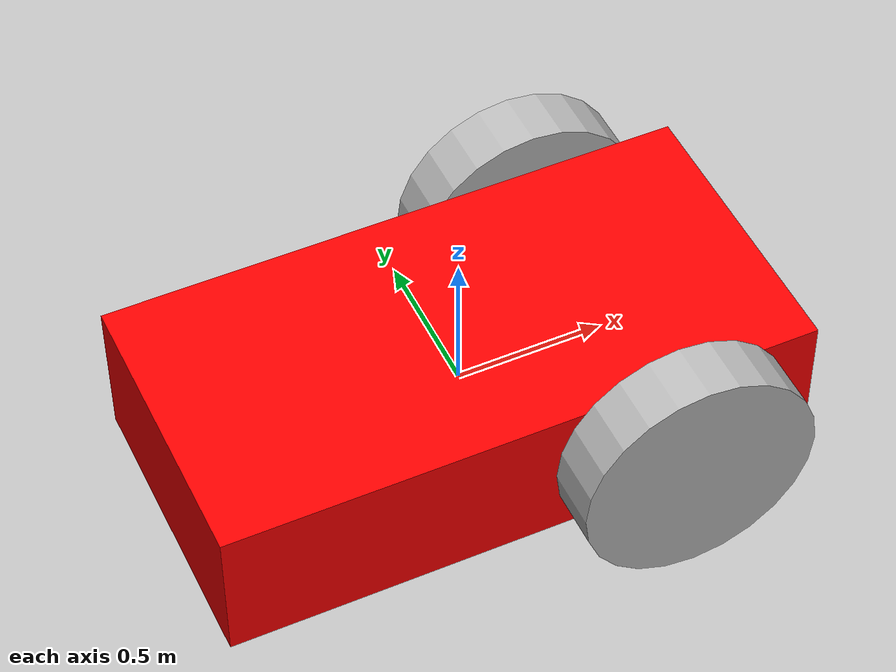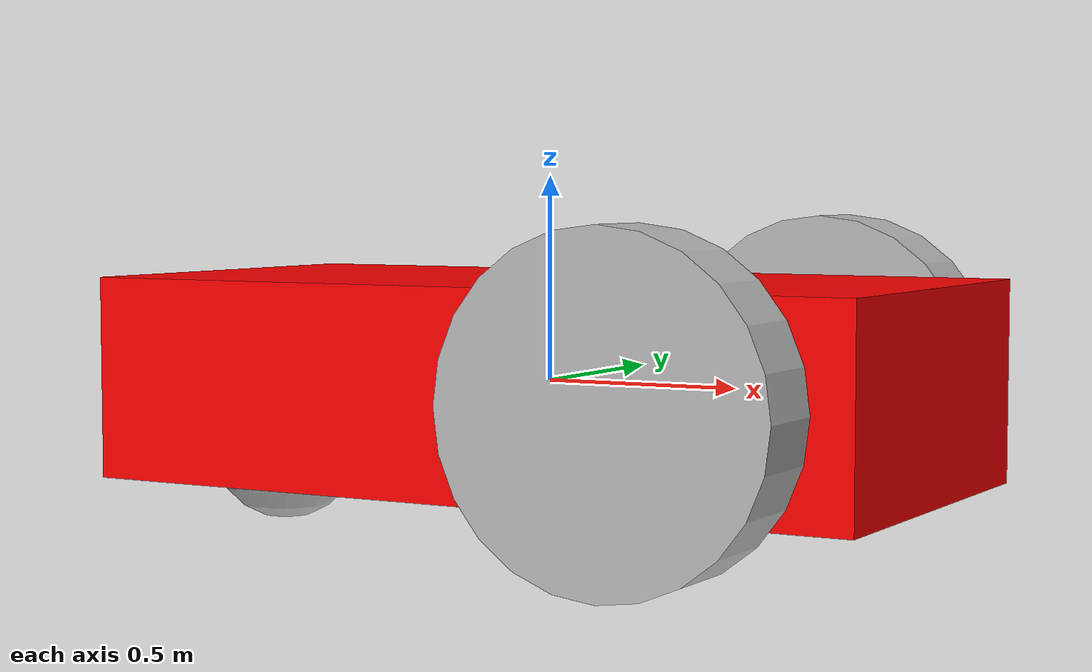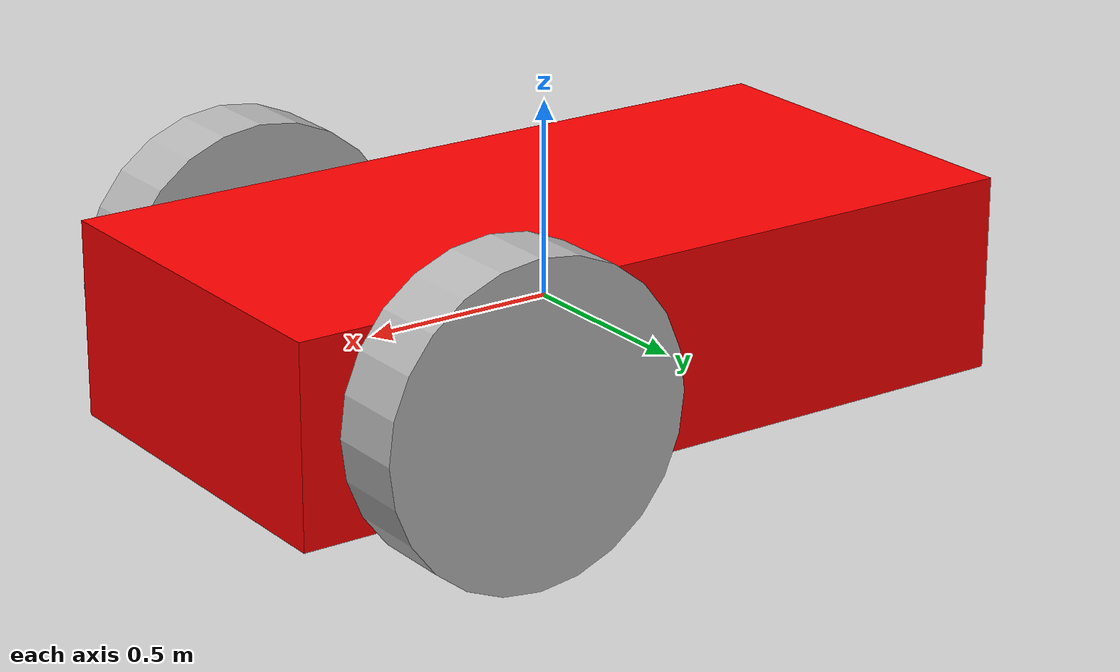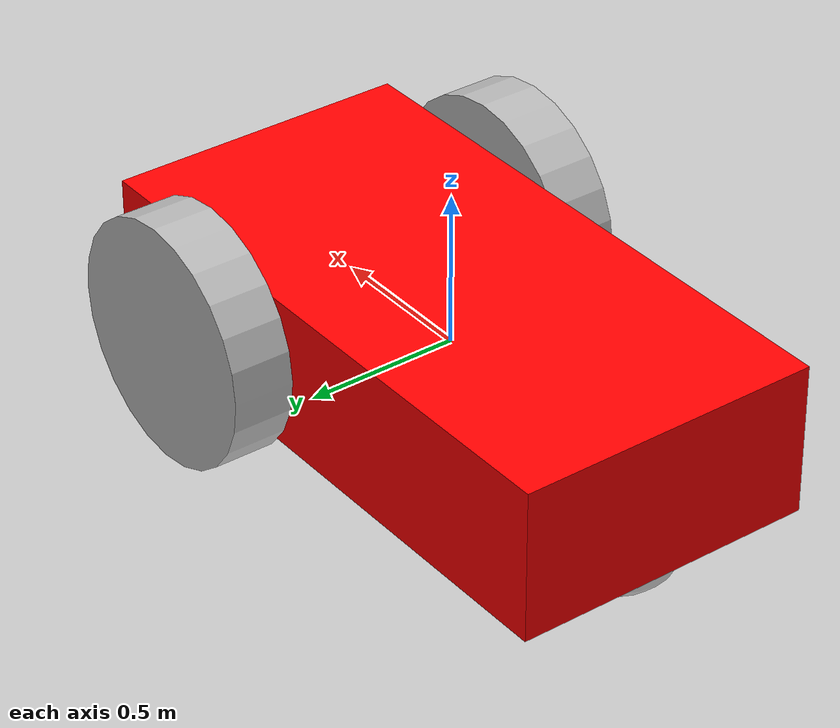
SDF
<sdf version='1.9'>
  <model name='auv'>
    <link name='dummy'>
      <inertial>
        <pose>-0.3731430303878355 0 -0.09328575759695888 0 0 0</pose>
        <mass>2.1439499999999998</mass>
        <inertia>
          <ixx>0.1326718484806082</ixx>
          <ixy>0</ixy>
          <ixz>-0.085371393922432912</ixz>
          <iyy>0.76014542417033981</iyy>
          <iyz>0</iyz>
          <izz>0.83413157568973184</izz>
        </inertia>
      </inertial>
      <collision name='dummy_fixed_joint_lump__base_link_collision'>
        <pose>0 0 0 0 0 0</pose>
        <geometry>
          <box>
            <size>2 1 0.5</size>
          </box>
        </geometry>
        <surface>
          <contact>
            <ode/>
          </contact>
          <friction>
            <ode/>
          </friction>
        </surface>
      </collision>
      <collision name='dummy_fixed_joint_lump__caster_link_collision_1'>
        <pose>-0.8 0 -0.2 0 0 0</pose>
        <geometry>
          <sphere>
            <radius>0.20000000000000001</radius>
          </sphere>
        </geometry>
      </collision>
      <visual name='dummy_fixed_joint_lump__base_link_visual'>
        <pose>0 0 0 0 0 0</pose>
        <geometry>
          <box>
            <size>2 1 0.5</size>
          </box>
        </geometry>
        <material>
          <ambient>1 0 0 1</ambient>
          <diffuse>1 0 0 1</diffuse>
          <specular>1 0 0 1</specular>
        </material>
      </visual>
      <visual name='dummy_fixed_joint_lump__caster_link_visual_1'>
        <pose>-0.8 0 -0.2 0 0 0</pose>
        <geometry>
          <sphere>
            <radius>0.20000000000000001</radius>
          </sphere>
        </geometry>
      </visual>
      <sensor name='imu_sensor' type='imu'>
        <always_on>true</always_on>
        <update_rate>1</update_rate>
        <visualize>true</visualize>
        <topic>imu</topic>
        <pose>0 0 0 0 -0 0</pose>
      </sensor>
    </link>
    <joint name='fl_joint' type='revolute'>
      <pose relative_to='dummy'>0.5 -0.6 0 1.5707 0 0</pose>
      <parent>dummy</parent>
      <child>fl_link</child>
      <axis>
        <xyz>0 0 1</xyz>
        <limit>
          <lower>-10000000000000000</lower>
          <upper>10000000000000000</upper>
        </limit>
        <dynamics>
          <spring_reference>0</spring_reference>
          <spring_stiffness>0</spring_stiffness>
        </dynamics>
      </axis>
    </joint>
    <link name='fl_link'>
      <pose relative_to='fl_joint'>0 0 0 0 0 0</pose>
      <inertial>
        <pose>0 0 0 0 0 0</pose>
        <mass>1</mass>
        <inertia>
          <ixx>0.043333000000000003</ixx>
          <ixy>0</ixy>
          <ixz>0</ixz>
          <iyy>0.043333000000000003</iyy>
          <iyz>0</iyz>
          <izz>0.080000000000000002</izz>
        </inertia>
      </inertial>
      <collision name='fl_link_collision'>
        <pose>0 0 0 0 0 0</pose>
        <geometry>
          <cylinder>
            <length>0.20000000000000001</length>
            <radius>0.40000000000000002</radius>
          </cylinder>
        </geometry>
      </collision>
      <visual name='fl_link_visual'>
        <pose>0 0 0 0 0 0</pose>
        <geometry>
          <cylinder>
            <length>0.20000000000000001</length>
            <radius>0.40000000000000002</radius>
          </cylinder>
        </geometry>
      </visual>
    </link>
    <joint name='fr_joint' type='revolute'>
      <pose relative_to='dummy'>0.5 0.6 0 1.5707 0 0</pose>
      <parent>dummy</parent>
      <child>fr_link</child>
      <axis>
        <xyz>0 0 1</xyz>
        <limit>
          <lower>-10000000000000000</lower>
          <upper>10000000000000000</upper>
        </limit>
        <dynamics>
          <spring_reference>0</spring_reference>
          <spring_stiffness>0</spring_stiffness>
        </dynamics>
      </axis>
    </joint>
    <link name='fr_link'>
      <pose relative_to='fr_joint'>0 0 0 0 0 0</pose>
      <inertial>
        <pose>0 0 0 0 0 0</pose>
        <mass>1</mass>
        <inertia>
          <ixx>0.043333000000000003</ixx>
          <ixy>0</ixy>
          <ixz>0</ixz>
          <iyy>0.043333000000000003</iyy>
          <iyz>0</iyz>
          <izz>0.080000000000000002</izz>
        </inertia>
      </inertial>
      <collision name='fr_link_collision'>
        <pose>0 0 0 0 0 0</pose>
        <geometry>
          <cylinder>
            <length>0.20000000000000001</length>
            <radius>0.40000000000000002</radius>
          </cylinder>
        </geometry>
      </collision>
      <visual name='fr_link_visual'>
        <pose>0 0 0 0 0 0</pose>
        <geometry>
          <cylinder>
            <length>0.20000000000000001</length>
            <radius>0.40000000000000002</radius>
          </cylinder>
        </geometry>
      </visual>
    </link>
    <static>false</static>
    <plugin name='ignition::gazebo::systems::DiffDrive' filename='ignition-gazebo-diff-drive-system'>
      <left_joint>fl_joint</left_joint>
      <right_joint>fr_joint</right_joint>
      <wheel_separation>1</wheel_separation>
      <wheel_radius>0.4</wheel_radius>
      <odom_publish_frequency>1</odom_publish_frequency>
      <topic>cmd_vel</topic>
    </plugin>
  </model>
</sdf>
